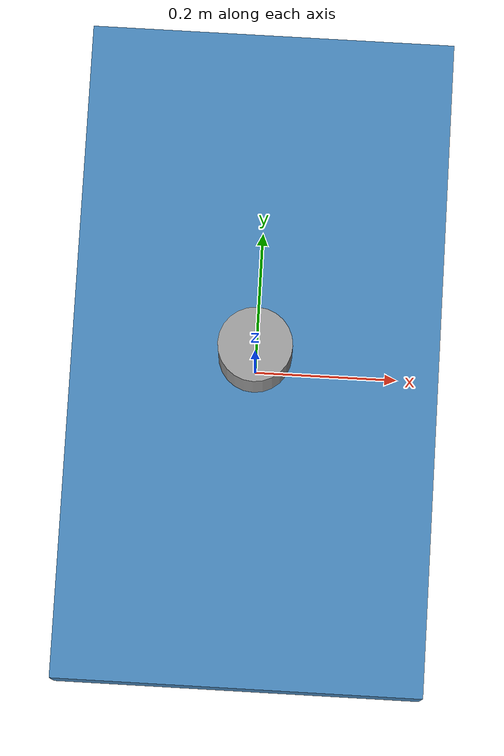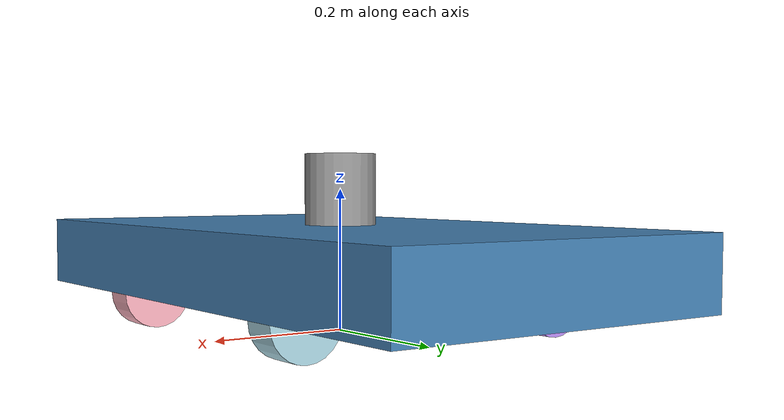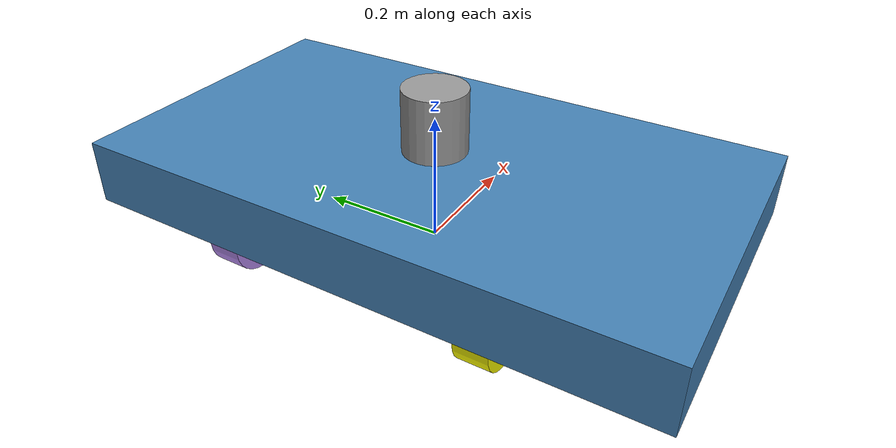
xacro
<?xml version="1.0"?>
<robot xmlns:xacro="http://www.ros.org/wiki/xacro"  name="robot">

    <xacro:include filename="robot_core.xacro" />
    <xacro:include filename="inertial_macros.xacro" />
    <xacro:include filename="gazebo_control.xacro" />
    <xacro:include filename="lidar.xacro" />

</robot>

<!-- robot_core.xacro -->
<robot xmlns:xacro="http://www.ros.org/wiki/xacro" >
<xacro:include filename="inertial_macros.xacro" />

  <!-- Materials -->
  <material name="Steel Blue">
    <color rgba="0.27 0.51 0.71 1" />
  </material>

  <material name="soft blue">
    <color rgba="0.68 0.85 0.9 1" />
  </material>

  <material name="Pastel Pink">
    <color rgba="1 0.71 0.76 1" />
  </material>

  <material name="Lavender Purple">
    <color rgba="0.73 0.56 0.96 1" />
  </material>

  <material name="yellow">
    <color rgba="1 1 0 1" />
  </material>

  <!-- BASE LINK -->
  <link name="base_link">
  </link>

  <!-- Chassis -->
  <joint name="chassis_joint" type="fixed">
    <parent link="base_link"/>
    <child link="chassis"/>
    <origin xyz="0 0 0" rpy="0 0 0"/>
  </joint>

  <link name="chassis">
    <visual>
      <origin xyz="0 0 0.1" rpy="0 0 0"/>
      <geometry>
        <box size="0.5 0.9 0.1"/>
      </geometry>
      <material name="Steel Blue"/>
    </visual>
    <collision>
      <origin xyz="0 0 0.05" rpy="0 0 0"/>
      <geometry>
        <box size="0.3 0.3 0.1"/>
      </geometry>
    </collision>
    <xacro:inertial_box mass="0.5" x="0.3" y="0.3" z="0.15">
      <origin xyz="0.15 0 0.075" rpy="0 0 0"/>
      </xacro:inertial_box>
  </link>

  <!-- Front Left Wheel -->
  <joint name="front_left_wheel_joint" type="continuous">
    <parent link="chassis"/>
    <child link="front_left_wheel"/>
    <origin xyz="0.2 0.2 0.05" rpy="-${pi/2} 0 0"/>
    <axis xyz="0 0 1"/>
  </joint>

  <link name="front_left_wheel">
    <visual>
      <origin xyz="0 0 0" rpy="0 0 0"/>
      <geometry>
        <cylinder length="0.05" radius="0.05"/>
      </geometry>
      <material name="soft blue"/>
    </visual>
    <collision>
      <origin xyz="0 0 0" rpy="-${pi/2} 0 0"/>
      <geometry>
        <cylinder length="0.05" radius="0.05"/>
      </geometry>
    </collision>
    <xacro:inertial_cylinder mass="0.1" length="0.05" radius="0.05">
      <origin xyz="0 0 0" rpy="0 0 0"/>
  </xacro:inertial_cylinder>
  </link>

  <!-- Front Right Wheel -->
  <joint name="front_right_wheel_joint" type="continuous">
    <parent link="chassis"/>
    <child link="front_right_wheel"/>
    <origin xyz="0.2 -0.2 0.05" rpy="${pi/2} 0 0"/>
    <axis xyz="0 0 -1"/>
  </joint>

  <link name="front_right_wheel">
    <visual>
      <origin xyz="0 0 0" rpy="0 0 0"/>
      <geometry>
        <cylinder length="0.05" radius="0.05"/>
      </geometry>
      <material name="Pastel Pink"/>
    </visual>
    <collision>
      <origin xyz="0 0 0" rpy="${pi/2} 0 0"/>
      <geometry>
        <cylinder length="0.05" radius="0.05"/>
      </geometry>
    </collision>ฃ<xacro:inertial_cylinder mass="0.1" length="0.05" radius="0.05">
      <origin xyz="0 0 0" rpy="0 0 0"/>
  </xacro:inertial_cylinder>
  </link>

  <!-- Rear Left Wheel -->
  <joint name="rear_left_wheel_joint" type="continuous">
    <parent link="chassis"/>
    <child link="rear_left_wheel"/>
    <origin xyz="-0.2 0.2 0.05" rpy="-${pi/2} 0 0"/>
    <axis xyz="0 0 1"/>
  </joint>

  <link name="rear_left_wheel">
    <visual>
      <origin xyz="0 0 0" rpy="0 0 0"/>
      <geometry>
        <cylinder length="0.05" radius="0.05"/>
      </geometry>
      <material name="Lavender Purple"/>
    </visual>
    <collision>
      <origin xyz="0 0 0" rpy="-${pi/2} 0 0"/>
      <geometry>
        <cylinder length="0.05" radius="0.05"/>
      </geometry>
    </collision>
    <xacro:inertial_cylinder mass="0.1" length="0.05" radius="0.05">
      <origin xyz="0 0 0" rpy="0 0 0"/>
  </xacro:inertial_cylinder>
  </link>

  <!-- Rear Right Wheel -->
  <joint name="rear_right_wheel_joint" type="continuous">
    <parent link="chassis"/>
    <child link="rear_right_wheel"/>
    <origin xyz="-0.2 -0.2 0.05" rpy="${pi/2} 0 0"/>
    <axis xyz="0 0 -1"/>
  </joint>

  <link name="rear_right_wheel">
    <visual>
      <origin xyz="0 0 0" rpy="0 0 0"/>
      <geometry>
        <cylinder length="0.05" radius="0.05"/>
      </geometry>
      <material name="yellow"/>
    </visual>
    <collision>
      <origin xyz="0 0 0" rpy="${pi/2} 0 0"/>
      <geometry>
        <cylinder length="0.05" radius="0.05"/>
      </geometry>
    </collision>
    <xacro:inertial_cylinder mass="0.1" length="0.05" radius="0.05">
      <origin xyz="0 0 0" rpy="0 0 0"/>
  </xacro:inertial_cylinder>
  <gazebo reference="caster_wheel">
    <material>Gazebo/Black</material>
    <mu1 value="0.5"/>
    <mu2 value="0.5"/>
  </gazebo>
  </link>

</robot>

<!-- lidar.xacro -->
<robot xmlns:xacro="http://www.ros.org/wiki/xacro">

    <!-- Joint connecting the LiDAR to the chassis -->
    <joint name="laser_joint" type="fixed">
        <parent link="chassis"/>
        <child link="laser_frame"/>
        <origin xyz="0 0 0.2" rpy="0 0 0"/>
    </joint>

    <!-- LiDAR frame -->
    <link name="laser_frame">
        <visual>
            <geometry>
                <cylinder radius="0.05" length="0.1"/>
            </geometry>
            <material name="Gray"/>
        </visual>
        <collision>
            <geometry>
                <cylinder radius="0.05" length="0.1"/>
            </geometry>
        </collision>
        <inertial>
            <mass value="0.1"/>
            <origin xyz="0 0 0" rpy="0 0 0"/>
            <inertia ixx="0.0001" ixy="0.0" ixz="0.0" iyy="0.0001" iyz="0.0" izz="0.0001"/>
        </inertial>
    </link>

    <!-- Gazebo properties for the LiDAR -->
    <gazebo reference="laser_frame">
        <material>Gazebo/Gray</material>
        <sensor name="laser" type="ray">
            <pose>0 0 0 0 0 0</pose>
            <visualize>true</visualize>
            <update_rate>10</update_rate>
            <ray>
                <scan>
                    <horizontal>
                        <samples>360</samples>
                        <min_angle>-3.14</min_angle>
                        <max_angle>3.14</max_angle>
                    </horizontal>
                </scan>
                <range>
                    <min>0.3</min>
                    <max>12.0</max>
                </range>
            </ray>
            <plugin name="laser_controller" filename="libgazebo_ros_ray_sensor.so">
                <ros>
                    <argument>~/out:=scan</argument>
                </ros>
                <output_type>sensor_msgs/LaserScan</output_type>
                <frame_name>laser_frame</frame_name>
            </plugin>
        </sensor>
    </gazebo>

</robot>
